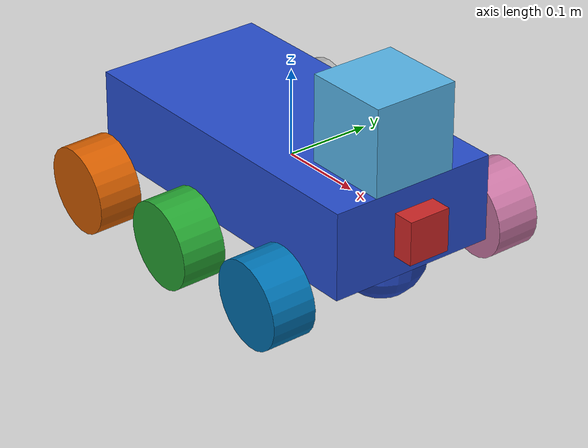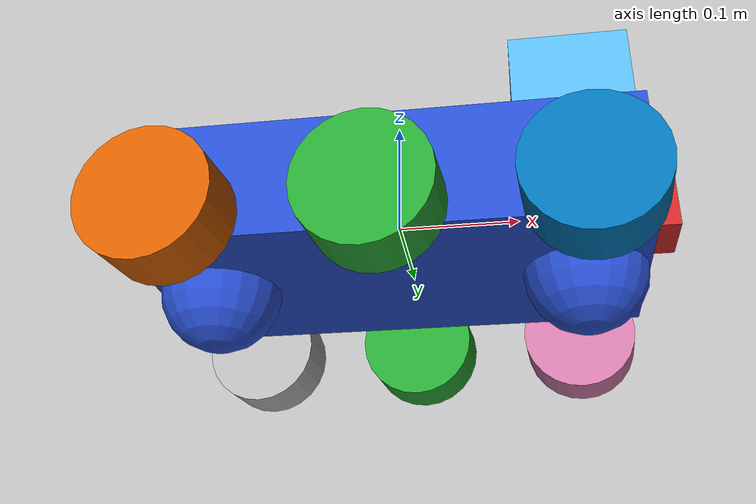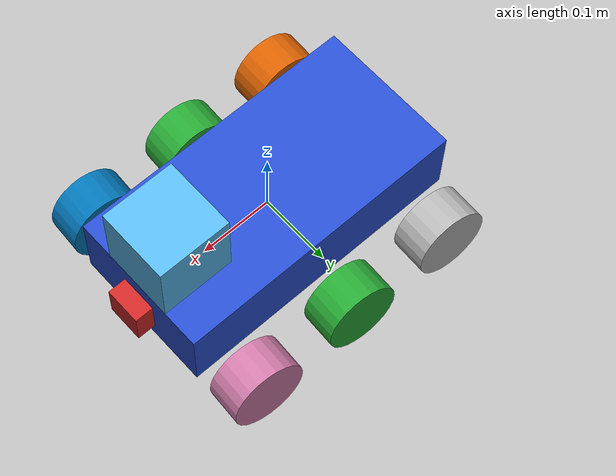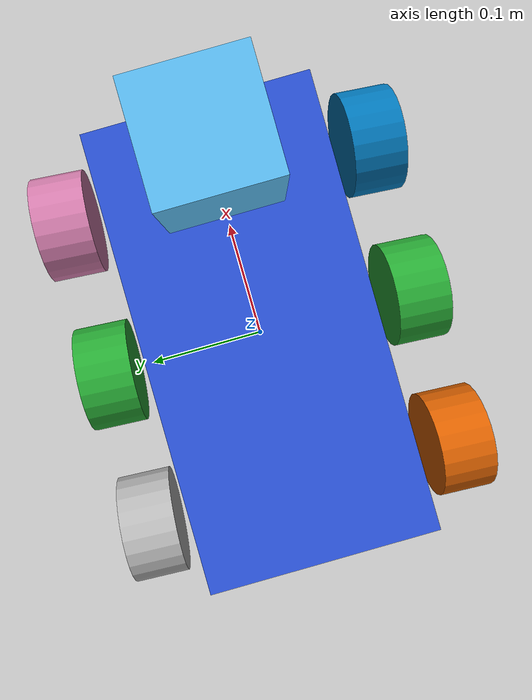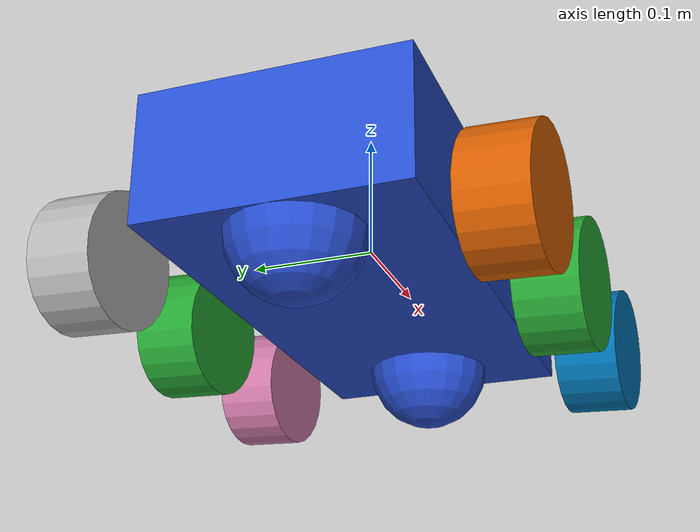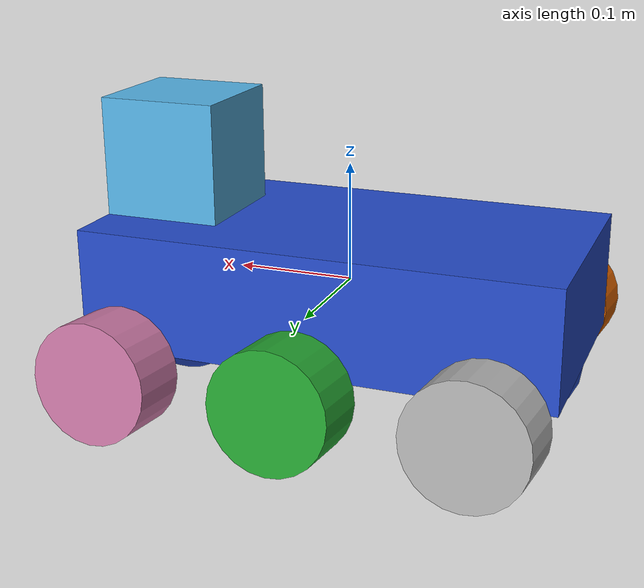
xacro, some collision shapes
<?xml version='1.0'?>

<robot name="my_robot" xmlns:xacro="http://www.ros.org/wiki/xacro">

  <xacro:include filename="$(find my_robot)/urdf/my_robot.gazebo" />

  <link name="robot_footprint"></link>

  <joint name="robot_footprint_joint" type="fixed">
    <origin xyz="0 0 0" rpy="0 0 0" />
    <parent link="robot_footprint"/>
    <child link="chassis" />
  </joint>

  <link name='chassis'>
    <pose>0 0 0.1 0 0 0</pose>

    <inertial>
      <mass value="15.0"/>
      <origin xyz="0.0 0 0" rpy=" 0 0 0"/>
      <inertia
          ixx="0.1" ixy="0" ixz="0"
          iyy="0.1" iyz="0"
          izz="0.1"
      />
    </inertial>

    <collision name='collision'>
      <origin xyz="0 0 0" rpy=" 0 0 0"/>
      <geometry>
        <box size=".4 .2 .1"/>
      </geometry>
    </collision>

    <visual name='chassis_visual'>
      <origin xyz="0 0 0" rpy=" 0 0 0"/>
      <geometry>
        <box size=".4 .2 .1"/>
      </geometry>
    </visual>

    <collision name='back_caster_collision'>
      <origin xyz="-0.15 0 -0.05" rpy=" 0 0 0"/>
      <geometry>
        <sphere radius="0.0499"/>
      </geometry>
    </collision>

    <visual name='back_caster_visual'>
      <origin xyz="-0.15 0 -0.05" rpy=" 0 0 0"/>
      <geometry>
        <sphere radius="0.05"/>
      </geometry>
    </visual>

    <collision name='front_caster_collision'>
      <origin xyz="0.15 0 -0.05" rpy=" 0 0 0"/>
      <geometry>
        <sphere radius="0.0499"/>
      </geometry>
    </collision>

    <visual name='front_caster_visual'>
      <origin xyz="0.15 0 -0.05" rpy=" 0 0 0"/>
      <geometry>
        <sphere radius="0.05"/>
      </geometry>
    </visual>

  </link>

  <link name='left_wheel'>

    <inertial>
      <mass value="5.0"/>
      <origin xyz="0.0 0 0" rpy=" 0 0 0"/>
      <inertia
          ixx="0.1" ixy="0" ixz="0"
          iyy="0.1" iyz="0"
          izz="0.1"
      />
    </inertial>

    <collision name='left_wheel_collision'>
      <origin xyz="0 0 0" rpy=" 0 1.507 1.507"/>
      <geometry>
        <cylinder length='0.05' radius='0.05'/>
      </geometry>
    </collision>

    <visual name='left_wheel_visual'>
      <origin xyz="0 0 0" rpy=" 0 1.507 1.507"/>
      <geometry>
        <cylinder length='0.05' radius='0.05'/>
      </geometry>
    </visual>
  </link>

	<link name='right_wheel'>

    <inertial>
      <mass value="5.0"/>
      <origin xyz="0.0 0 0" rpy=" 0 0 0"/>
      <inertia
          ixx="0.1" ixy="0" ixz="0"
          iyy="0.1" iyz="0"
          izz="0.1"
      />
    </inertial>

    <collision name='right_wheel_collision'>
      <origin xyz="0 0 0" rpy=" 0 1.507 1.507"/>
      <geometry>
        <cylinder length='0.05' radius='0.05'/>
      </geometry>
    </collision>

    <visual name='right_wheel_visual'>
      <origin xyz="0 0 0" rpy=" 0 1.507 1.507"/>
      <geometry>
        <cylinder length='0.05' radius='0.05'/>
      </geometry>
    </visual>
  </link>

	<joint type="continuous" name="left_wheel_hinge">
    <origin xyz="0 0.15 -0.05" rpy="0 0 0"/>
    <child link="left_wheel"/>
    <parent link="chassis"/>
    <axis xyz="0 1 0" rpy="0 0 0"/>
    <limit effort="10000" velocity="1000"/>
    <dynamics damping="1.0" friction="1.0"/>
  </joint>

	<joint type="continuous" name="right_wheel_hinge">
    <origin xyz="0 -0.15 -0.05" rpy="0 0 0"/>
    <child link="right_wheel"/>
    <parent link="chassis"/>
    <axis xyz="0 1 0" rpy="0 0 0"/>
    <limit effort="10000" velocity="1000"/>
    <dynamics damping="1.0" friction="1.0"/>
  </joint>

  <!-- Optional -->
  <link name='right_wheel_f'>

    <inertial>
      <mass value="5.0"/>
      <origin xyz="0.0 0 0" rpy=" 0 0 0"/>
      <inertia
          ixx="0.1" ixy="0" ixz="0"
          iyy="0.1" iyz="0"
          izz="0.1"
      />
    </inertial>

    <collision name='right_wheel_collision_f'>
      <origin xyz="0 0 0" rpy=" 0 1.507 1.507"/>
      <geometry>
        <cylinder length='0.05' radius='0.05'/>
      </geometry>
    </collision>

    <visual name='right_wheel_visual_f'>
      <origin xyz="0 0 0" rpy=" 0 1.507 1.507"/>
      <geometry>
        <cylinder length='0.05' radius='0.05'/>
      </geometry>
    </visual>
  </link>

	<joint type="continuous" name="right_wheel_hinge_f">
    <origin xyz="0.15 -0.15 -0.05" rpy="0 0 0"/>
    <child link="right_wheel_f"/>
    <parent link="chassis"/>
    <axis xyz="0 1 0" rpy="0 0 0"/>
    <limit effort="10000" velocity="1000"/>
    <dynamics damping="1.0" friction="1.0"/>
  </joint>

  <link name='right_wheel_b'>

    <inertial>
      <mass value="5.0"/>
      <origin xyz="0.0 0 0" rpy=" 0 0 0"/>
      <inertia
          ixx="0.1" ixy="0" ixz="0"
          iyy="0.1" iyz="0"
          izz="0.1"
      />
    </inertial>

    <collision name='right_wheel_collision_b'>
      <origin xyz="0 0 0" rpy=" 0 1.507 1.507"/>
      <geometry>
        <cylinder length='0.05' radius='0.05'/>
      </geometry>
    </collision>

    <visual name='right_wheel_visual_b'>
      <origin xyz="0 0 0" rpy=" 0 1.507 1.507"/>
      <geometry>
        <cylinder length='0.05' radius='0.05'/>
      </geometry>
    </visual>
  </link>

	<joint type="continuous" name="right_wheel_hinge_b">
    <origin xyz="-0.15 -0.15 -0.05" rpy="0 0 0"/>
    <child link="right_wheel_b"/>
    <parent link="chassis"/>
    <axis xyz="0 1 0" rpy="0 0 0"/>
    <limit effort="10000" velocity="1000"/>
    <dynamics damping="1.0" friction="1.0"/>
  </joint>

  <link name='left_wheel_f'>

    <inertial>
      <mass value="5.0"/>
      <origin xyz="0.0 0 0" rpy=" 0 0 0"/>
      <inertia
          ixx="0.1" ixy="0" ixz="0"
          iyy="0.1" iyz="0"
          izz="0.1"
      />
    </inertial>

    <collision name='left_wheel_collision_f'>
      <origin xyz="0 0 0" rpy=" 0 1.507 1.507"/>
      <geometry>
        <cylinder length='0.05' radius='0.05'/>
      </geometry>
    </collision>

    <visual name='left_wheel_visual_f'>
      <origin xyz="0 0 0" rpy=" 0 1.507 1.507"/>
      <geometry>
        <cylinder length='0.05' radius='0.05'/>
      </geometry>
    </visual>
  </link>

  <joint type="continuous" name="left_wheel_hinge_f">
    <origin xyz="0.15 0.15 -0.05" rpy="0 0 0"/>
    <child link="left_wheel_f"/>
    <parent link="chassis"/>
    <axis xyz="0 1 0" rpy="0 0 0"/>
    <limit effort="10000" velocity="1000"/>
    <dynamics damping="1.0" friction="1.0"/>
  </joint>

  <link name='left_wheel_b'>

    <inertial>
      <mass value="5.0"/>
      <origin xyz="0.0 0 0" rpy=" 0 0 0"/>
      <inertia
          ixx="0.1" ixy="0" ixz="0"
          iyy="0.1" iyz="0"
          izz="0.1"
      />
    </inertial>

    <collision name='left_wheel_collision_b'>
      <origin xyz="0 0 0" rpy=" 0 1.507 1.507"/>
      <geometry>
        <cylinder length='0.05' radius='0.05'/>
      </geometry>
    </collision>

    <visual name='left_wheel_visual_b'>
      <origin xyz="0 0 0" rpy=" 0 1.507 1.507"/>
      <geometry>
        <cylinder length='0.05' radius='0.05'/>
      </geometry>
    </visual>
  </link>

  <joint type="continuous" name="left_wheel_hinge_b">
    <origin xyz="-0.15 0.15 -0.05" rpy="0 0 0"/>
    <child link="left_wheel_b"/>
    <parent link="chassis"/>
    <axis xyz="0 1 0" rpy="0 0 0"/>
    <limit effort="10000" velocity="1000"/>
    <dynamics damping="1.0" friction="1.0"/>
  </joint>

	<link name='camera'>
		<inertial>
      <mass value="0.1"/>
      <origin xyz="0.0 0 0" rpy=" 0 0 0"/>
      <inertia
          ixx="0.000001" ixy="0" ixz="0"
          iyy="0.000001" iyz="0"
          izz="0.000001"
      />
    </inertial>

    <collision name='camera_collision'>
      <origin xyz="0 0 0" rpy=" 0 0 0"/>
      <geometry>
        <box size="0.05 0.05 0.05"/>
      </geometry>
    </collision>

    <visual name='camera_visual'>
      <origin xyz="0 0 0" rpy=" 0 0 0"/>
      <geometry>
        <box size="0.05 0.05 0.05"/>
      </geometry>
    </visual>
	</link>

	<joint type="fixed" name="camera_joint">
    <origin xyz="0.2 0 0" rpy="0 0 0"/>
    <child link="camera"/>
    <parent link="chassis"/>
    <axis xyz="0 1 0" rpy="0 0 0"/>
  </joint>

	<link name='hokuyo'>
		<inertial>
      <mass value="0.00001"/>
      <origin xyz="0 0 0" rpy=" 0 0 0"/>
      <inertia
          ixx="0.000001" ixy="0" ixz="0"
          iyy="0.000001" iyz="0"
          izz="0.000001"
      />
    </inertial>

    <collision name='hokuyo_collision'>
      <origin xyz="0 0 0" rpy=" 0 0 0"/>
      <geometry>
        <box size='0.1 0.1 0.1'/>
      </geometry>
    </collision>

    <visual name='hokuyo_visual'>
      <origin xyz="0 0 0" rpy=" 0 0 0"/>
      <geometry>
				<mesh filename = 'package://my_robot/meshes/hokuyo.dae'/>
			</geometry>
    </visual>
	</link>

	<joint type="fixed" name="hokuyo_joint">
    <origin xyz="0.15 0 0.1" rpy="0 0 0"/>
    <child link="hokuyo"/>
    <parent link="chassis"/>
    <axis xyz="0 1 0" rpy="0 0 0"/>
  </joint>

  <gazebo reference="left_wheel">
    <material>Gazebo/Green</material>
	</gazebo>

	<gazebo reference="right_wheel">
    <material>Gazebo/Green</material>
	</gazebo>

	<gazebo reference="chassis">
    <material>Gazebo/Blue</material>
	</gazebo>

	<gazebo reference="camera">
    <material>Gazebo/Red</material>
	</gazebo>

</robot>
